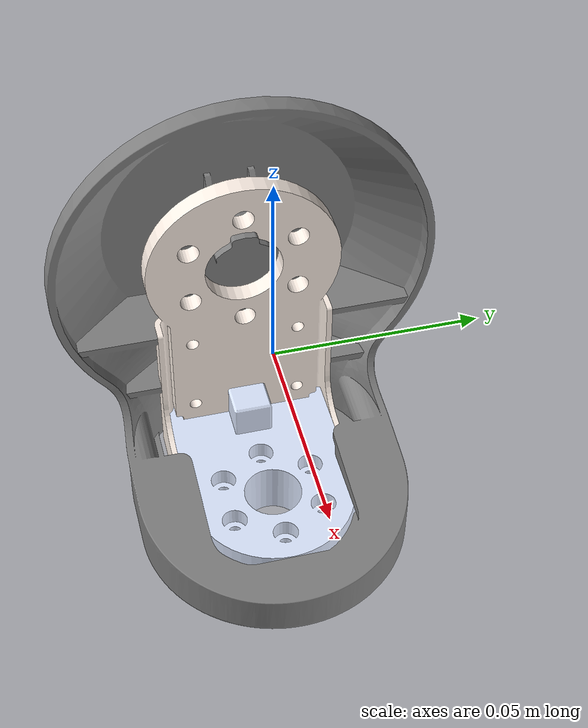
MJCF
<mujoco model="link2_obj">
  <asset>
    <mesh name="link2_00" file="link2_00.obj"/>
    <mesh name="link2_01" file="link2_01.obj"/>
    <mesh name="link2_02" file="link2_02.obj"/>
    <material name="link2_00_mat" rgba="0.501961 0.501961 0.501961 1.000000"/>
    <material name="link2_01_mat" rgba="1.000000 0.949020 0.909804 1.000000"/>
    <material name="link2_02_mat" rgba="0.866667 0.909804 1.000000 1.000000"/>
  </asset>
  <worldbody>
    <body name="link2_obj">
      <geom type="mesh" mesh="link2_00" material="link2_00_mat" contype="0" conaffinity="0" group="1"/>
      <geom type="mesh" mesh="link2_01" material="link2_01_mat" contype="0" conaffinity="0" group="1"/>
      <geom type="mesh" mesh="link2_02" material="link2_02_mat" contype="0" conaffinity="0" group="1"/>
    </body>
  </worldbody>
</mujoco>
